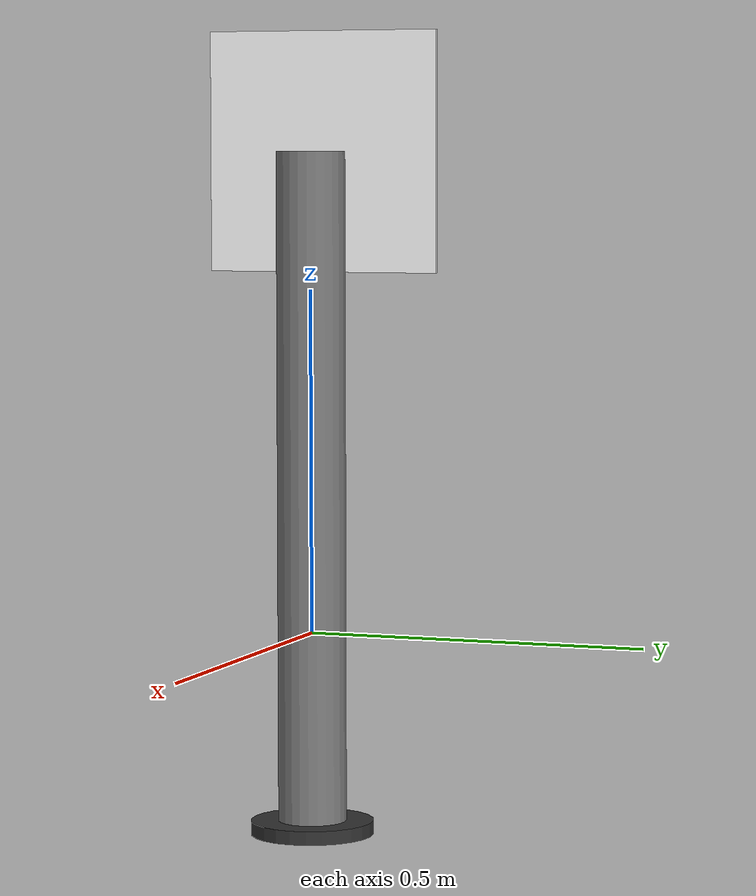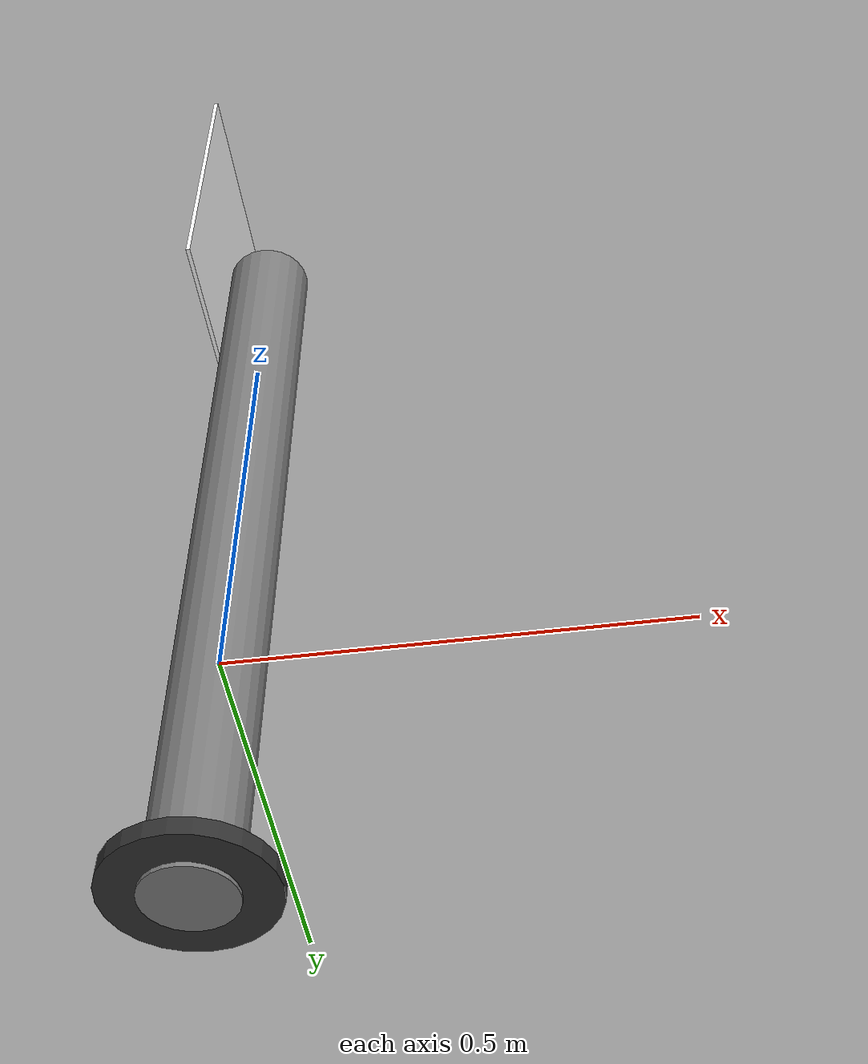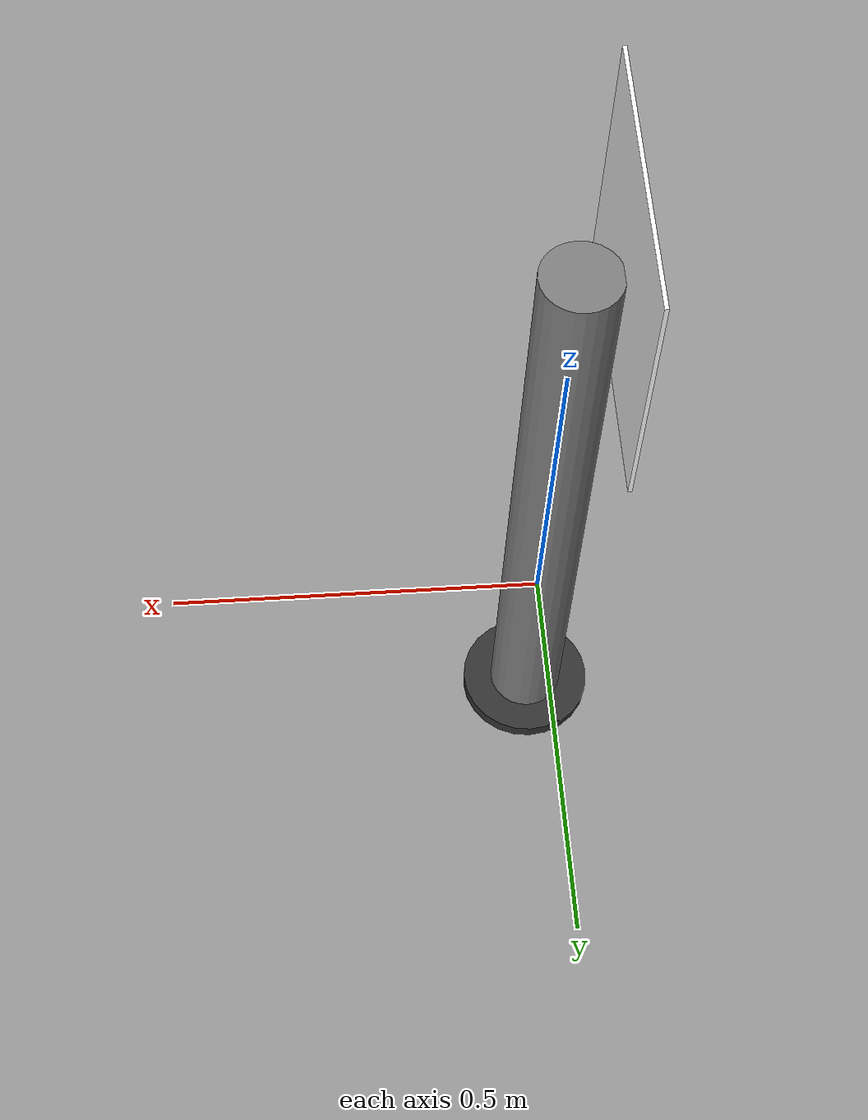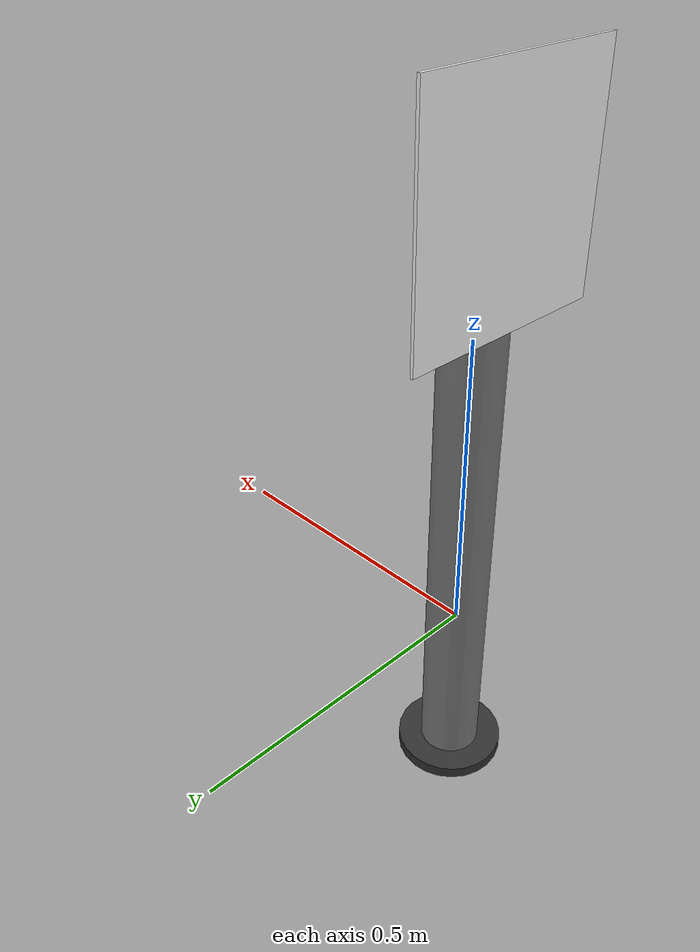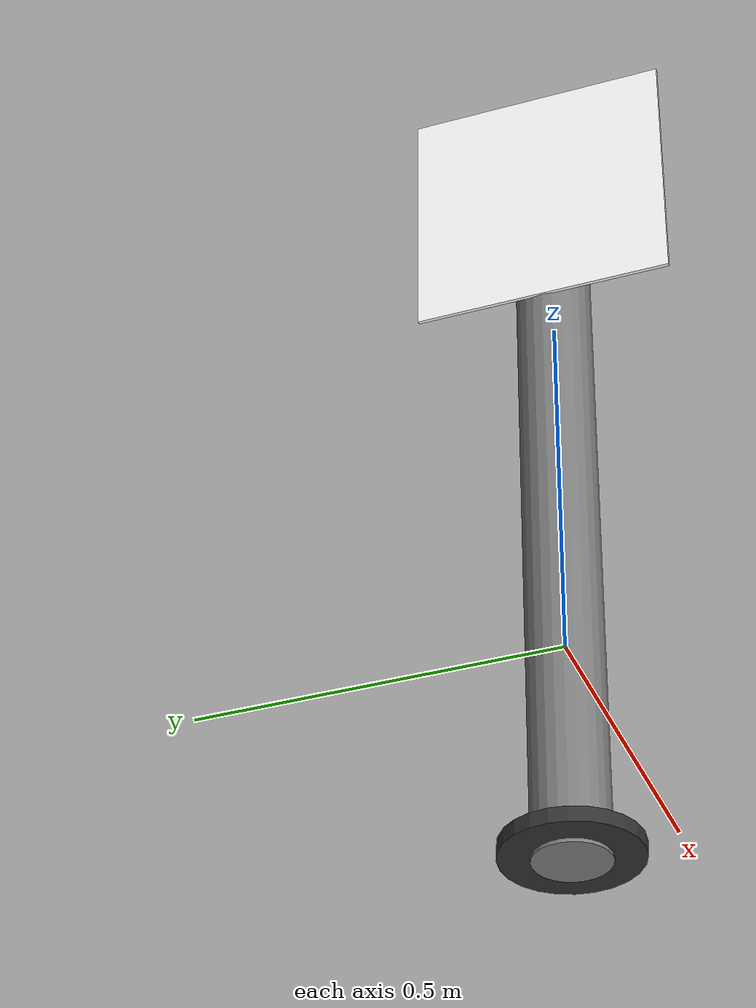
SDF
<?xml version='1.0'?>
<sdf version='1.8'>
  <model name='aruco_markers5'>
    <static>true</static>
    <pose>0 0 0.0 0 0 0</pose> <!-- Reset to origin, let world file control position -->

    <!-- Post/Pole - Main link -->
    <link name='post_link'>
      <pose>0 0 0.2 0 0 0</pose>
      <visual name='post_visual'>
        <geometry>
          <cylinder>
            <radius>0.05</radius>
            <length>1</length>
          </cylinder>
        </geometry>
        <material>
          <ambient>0.5 0.5 0.5 1</ambient>
          <diffuse>0.5 0.5 0.5 1</diffuse>
          <specular>0.1 0.1 0.1 1</specular>
          <emissive>0 0 0 1</emissive>
        </material>
      </visual>
      <collision name='post_collision'>
        <geometry>
          <cylinder>
            <radius>0.025</radius>
            <length>1.0</length>
          </cylinder>
        </geometry>
      </collision>

      <!-- Small base for stability -->
      <visual name='base_visual'>
        <pose>0 0 -0.485 0 0 0</pose>
        <geometry>
          <cylinder>
            <radius>0.09</radius>
            <length>0.02</length>
          </cylinder>
        </geometry>
        <material>
          <ambient>0.2 0.2 0.2 1</ambient>
          <diffuse>0.2 0.2 0.2 1</diffuse>
          <specular>0.1 0.1 0.1 1</specular>
          <emissive>0 0 0 1</emissive>
        </material>
      </visual>

      <collision name='base_collision'>
        <pose>0 0 -0.485 0 0 0</pose>
        <geometry>
          <cylinder>
            <radius>0.09</radius>
            <length>0.02</length>
          </cylinder>
        </geometry>
      </collision>

      <!-- ArUco plate as part of the same link -->
      <visual name='aruco_plate_visual'>
        <pose>-0.05 0 0.5 0 1.5708 0</pose> <!-- Relative to post center -->
        <geometry>
          <box>
            <size>0.35 0.35 0.005</size>
          </box>
        </geometry>
        <material>
          <pbr>
            <metal>
              <albedo_map>textures/aruco05.png</albedo_map>
            </metal>
          </pbr>
        <ambient>1 1 1 1</ambient>
        <diffuse>1 1 1 1</diffuse>
        <specular>0.1 0.1 0.1 1</specular>
        <emissive>0 0 0 1</emissive>
        </material>
      </visual>

      <collision name='aruco_plate_collision'>
        <pose>0.1 0 0.5 0 1.5708 0</pose> <!-- Same relative position -->
        <geometry>
          <box>
            <size>0.35 0.35 0.005</size>
          </box>
        </geometry>
      </collision>
    </link>
  </model>
</sdf>
